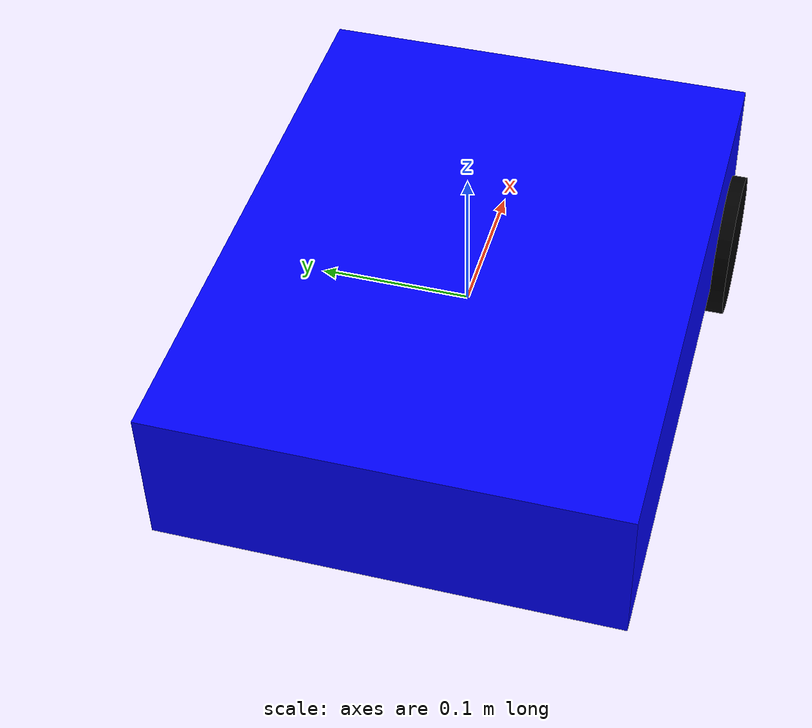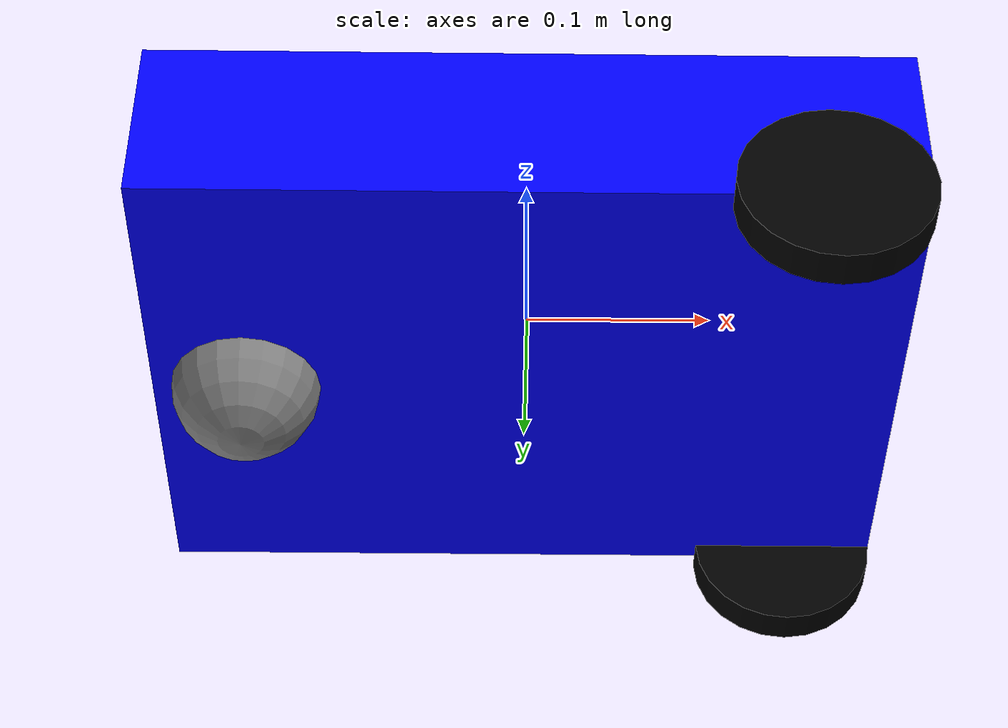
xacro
<?xml version="1.0"?>
<robot name="simple_robot" xmlns:xacro="http://www.ros.org/wiki/xacro">

  <!-- ================= 参数 ================= -->
  <xacro:property name="base_length" value="0.40"/>
  <xacro:property name="base_width"  value="0.30"/>
  <xacro:property name="base_height" value="0.10"/>

  <xacro:property name="wheel_radius" value="0.05"/>
  <xacro:property name="wheel_width"  value="0.02"/>
  <xacro:property name="caster_radius" value="0.04"/>

  <!-- 轮子位置：按照之前的URDF -->
  <xacro:property name="wheel_x" value="0.15"/>
  <xacro:property name="wheel_y_left" value="0.15"/>
  <xacro:property name="wheel_y_right" value="-0.15"/>
  <xacro:property name="wheel_z" value="-0.05"/>

  <!-- 万向轮位置 -->
  <xacro:property name="caster_x" value="-0.15"/>
  <xacro:property name="caster_y" value="0"/>
  <xacro:property name="caster_z" value="-0.05"/>

  <!-- ================= base_footprint ================= -->
  <link name="base_footprint"/>

  <joint name="base_footprint_joint" type="fixed">
    <parent link="base_footprint"/>
    <child link="base_link"/>
    <origin xyz="0 0 0" rpy="0 0 0"/>
  </joint>

  <!-- ================= 底盘 ================= -->
  <link name="base_link">
    <inertial>
      <mass value="5.0"/>
      <inertia ixx="0.10" ixy="0.0" ixz="0.0" iyy="0.10" iyz="0.0" izz="0.10"/>
    </inertial>
    <visual>
      <geometry><box size="${base_length} ${base_width} ${base_height}"/></geometry>
      <material name="blue"><color rgba="0 0 1 1"/></material>
    </visual>
    <collision>
      <geometry><box size="${base_length} ${base_width} ${base_height}"/></geometry>
    </collision>
  </link>

  <gazebo reference="base_link">
    <material>Gazebo/Blue</material>
    <mu1>0.2</mu1>
    <mu2>0.2</mu2>
    <kp>1000000.0</kp>
    <kd>100.0</kd>
  </gazebo>

  <!-- ================= 左轮 ================= -->
  <link name="wheel_left_link">
    <inertial>
      <mass value="0.5"/>
      <inertia ixx="0.001" ixy="0.0" ixz="0.0" iyy="0.001" iyz="0.0" izz="0.001"/>
    </inertial>
    <visual>
      <origin xyz="0 0 0" rpy="1.57079632679 0 0"/>
      <geometry><cylinder radius="${wheel_radius}" length="${wheel_width}"/></geometry>
      <material name="black"><color rgba="0 0 0 1"/></material>
    </visual>
    <collision>
      <origin xyz="0 0 0" rpy="1.57079632679 0 0"/>
      <geometry><cylinder radius="${wheel_radius}" length="${wheel_width}"/></geometry>
    </collision>
  </link>

  <gazebo reference="wheel_left_link">
    <material>Gazebo/Black</material>
    <mu1>2.0</mu1>
    <mu2>2.0</mu2>
    <kp>1000000.0</kp>
    <kd>100.0</kd>
  </gazebo>

  <joint name="wheel_left_link_joint" type="continuous">
    <parent link="base_link"/>
    <child link="wheel_left_link"/>
    <origin xyz="${wheel_x} ${wheel_y_left} ${wheel_z}" rpy="0 0 0"/>
    <axis xyz="0 1 0"/>
  </joint>

  <!-- ================= 右轮 ================= -->
  <link name="wheel_right_link">
    <inertial>
      <mass value="0.5"/>
      <inertia ixx="0.001" ixy="0.0" ixz="0.0" iyy="0.001" iyz="0.0" izz="0.001"/>
    </inertial>
    <visual>
      <origin xyz="0 0 0" rpy="1.57079632679 0 0"/>
      <geometry><cylinder radius="${wheel_radius}" length="${wheel_width}"/></geometry>
      <material name="black"><color rgba="0 0 0 1"/></material>
    </visual>
    <collision>
      <origin xyz="0 0 0" rpy="1.57079632679 0 0"/>
      <geometry><cylinder radius="${wheel_radius}" length="${wheel_width}"/></geometry>
    </collision>
  </link>

  <gazebo reference="wheel_right_link">
    <material>Gazebo/Black</material>
    <mu1>2.0</mu1>
    <mu2>2.0</mu2>
    <kp>1000000.0</kp>
    <kd>100.0</kd>
  </gazebo>

  <joint name="wheel_right_link_joint" type="continuous">
    <parent link="base_link"/>
    <child link="wheel_right_link"/>
    <origin xyz="${wheel_x} ${wheel_y_right} ${wheel_z}" rpy="0 0 0"/>
    <axis xyz="0 1 0"/>
  </joint>

  <!-- ================= 万向轮 ================= -->
  <link name="caster_link">
    <inertial>
      <mass value="0.2"/>
      <inertia ixx="0.0005" ixy="0.0" ixz="0.0" iyy="0.0005" iyz="0.0" izz="0.0005"/>
    </inertial>
    <visual>
      <geometry><sphere radius="${caster_radius}"/></geometry>
      <material name="gray"><color rgba="0.5 0.5 0.5 1"/></material>
    </visual>
    <collision>
      <geometry><sphere radius="${caster_radius}"/></geometry>
    </collision>
  </link>

  <gazebo reference="caster_link">
    <material>Gazebo/Grey</material>
    <mu1>0.05</mu1>
    <mu2>0.05</mu2>
    <kp>1000000.0</kp>
    <kd>100.0</kd>
  </gazebo>

  <joint name="caster_joint" type="fixed">
    <parent link="base_link"/>
    <child link="caster_link"/>
    <origin xyz="${caster_x} ${caster_y} ${caster_z}" rpy="0 0 0"/>
  </joint>

  <!-- ================= Gazebo diff_drive 插件 ================= -->
  <gazebo>
    <plugin name="diff_drive" filename="libgazebo_ros_diff_drive.so">
      <leftJoint>wheel_left_link_joint</leftJoint>
      <rightJoint>wheel_right_link_joint</rightJoint>
      <wheelSeparation>0.30</wheelSeparation>
      <wheelDiameter>0.10</wheelDiameter>
      <robotBaseFrame>base_link</robotBaseFrame>
      <commandTopic>cmd_vel</commandTopic>
      <odometryTopic>odom</odometryTopic>
      <publishOdom>true</publishOdom>
      <publishOdomTF>true</publishOdomTF>
      <odometryFrame>odom</odometryFrame>
      <updateRate>50</updateRate>
      <wheelAcceleration>5.0</wheelAcceleration>
      <wheelTorque>20.0</wheelTorque>
      <legacyMode>false</legacyMode>
    </plugin>
  </gazebo>

</robot>
